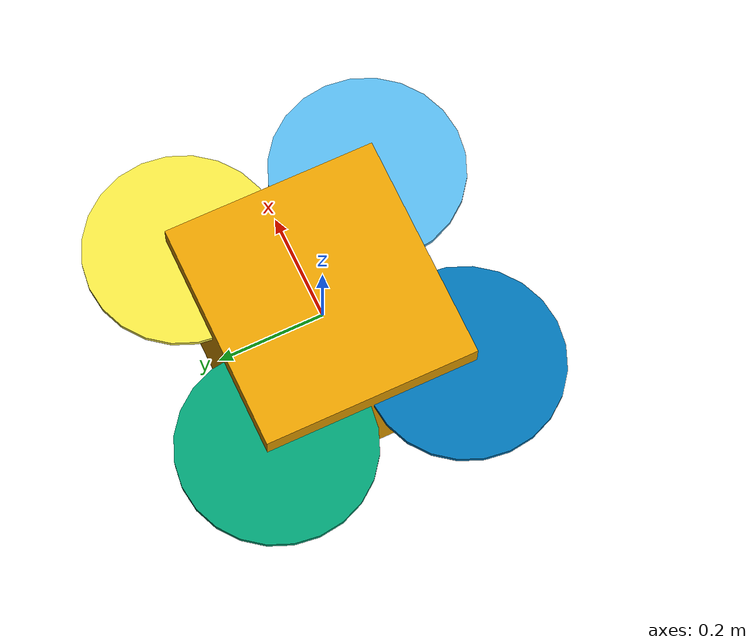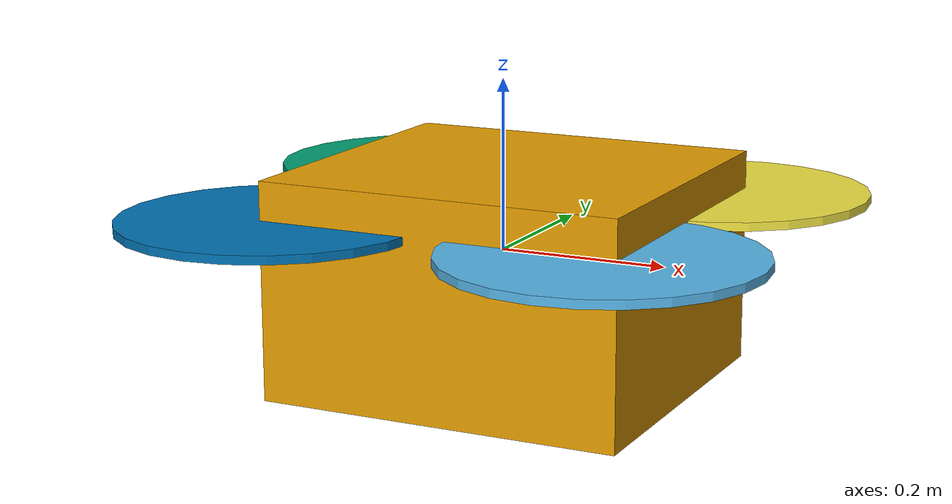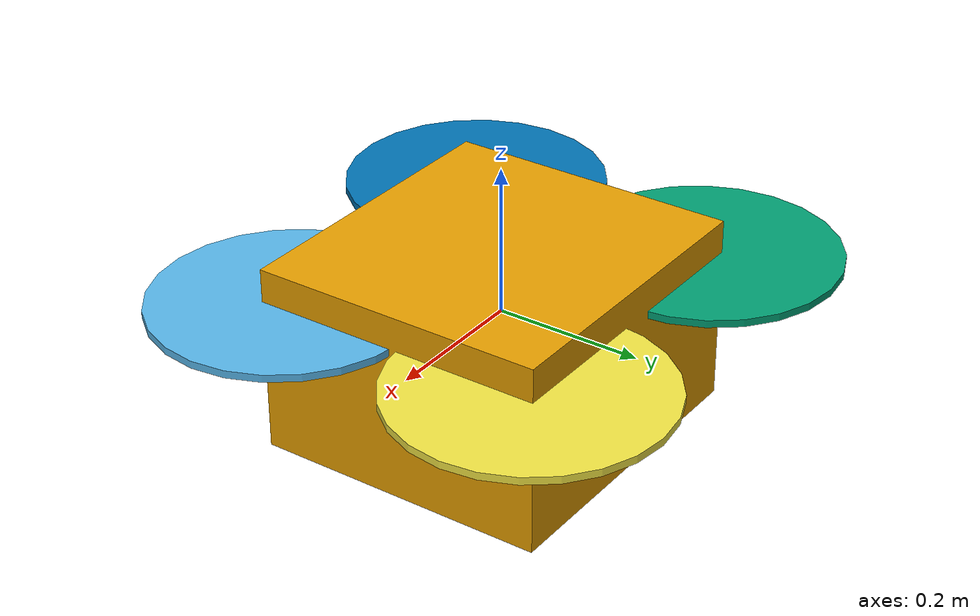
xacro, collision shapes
<?xml version='1.0' encoding='utf-8'?>
<robot name='coro_bandicoot_sensor_config_1' xmlns:xacro="http://ros.org/wiki/xacro">
  <xacro:arg name="name" default="coro_bandicoot_sensor_config_1"/>
  <xacro:property name="robot_namespace" value="$(arg name)"/>
  <link name='${robot_namespace}/base_link'>
    <inertial>
      <origin xyz='0 0 0' rpy='0 -0 0'/>
      <mass value='3.182'/>
      <inertia ixx='0.0298' ixy='0' ixz='0' iyy='0.0298' iyz='0' izz='0.0477'/>
    </inertial>
    <collision name='base_link_inertia_collision'>
      <origin xyz='0.01 0 -0.0275' rpy='0 -0 0'/>
      <geometry>
        <box size='0.43 0.4 0.255'/>
      </geometry>
    </collision>
    <visual name='plate1_visual'>
      <origin xyz='0 0 0' rpy='0 -0 0'/>
      <geometry>
        <box size='0.14 0.14 0.001'/>
      </geometry>
    </visual>
    <visual name='plate2_visual'>
      <origin xyz='0 0 -0.04' rpy='0 -0 0'/>
      <geometry>
        <box size='0.14 0.14 0.001'/>
      </geometry>
    </visual>
    <visual name='computer_visual'>
      <origin xyz='0.02 0.01 0.01' rpy='0 -0 0'/>
      <geometry>
        <box size='0.1 0.1 0.02'/>
      </geometry>
    </visual>
    <visual name='battery1_visual'>
      <origin xyz='0.13 0.12 -0.04' rpy='0 -0 0.74'/>
      <geometry>
        <box size='0.14 0.04 0.06'/>
      </geometry>
    </visual>
    <visual name='battery2_visual'>
      <origin xyz='-0.13 -0.12 -0.04' rpy='0 -0 0.74'/>
      <geometry>
        <box size='0.14 0.04 0.06'/>
      </geometry>
    </visual>
    <visual name='leg1_visual'>
      <origin xyz='0.2 0.18 -0.08' rpy='0 -0 0'/>
      <geometry>
        <cylinder radius='0.005' length='0.15'/>
      </geometry>
    </visual>
    <visual name='leg2_visual'>
      <origin xyz='0.2 -0.18 -0.08' rpy='0 -0 0'/>
      <geometry>
        <cylinder radius='0.005' length='0.15'/>
      </geometry>
    </visual>
    <visual name='leg3_visual'>
      <origin xyz='-0.2 0.18 -0.08' rpy='0 -0 0'/>
      <geometry>
        <cylinder radius='0.005' length='0.15'/>
      </geometry>
    </visual>
    <visual name='leg4_visual'>
      <origin xyz='-0.2 -0.18 -0.08' rpy='0 -0 0'/>
      <geometry>
        <cylinder radius='0.005' length='0.15'/>
      </geometry>
    </visual>
    <visual name='antenna1_visual'>
      <origin xyz='0.05 -0.05 0.05' rpy='0 -0 0'/>
      <geometry>
        <cylinder radius='0.005' length='0.1'/>
      </geometry>
    </visual>
    <visual name='antenna2_visual'>
      <origin xyz='-0.05 -0.05 0.05' rpy='0 -0 0'/>
      <geometry>
        <cylinder radius='0.005' length='0.1'/>
      </geometry>
    </visual>
    <visual name='arm1_visual'>
      <origin xyz='0.13 0.12 -0.005' rpy='0 -0 0.74'/>
      <geometry>
        <box size='0.21 0.03 0.01'/>
      </geometry>
    </visual>
    <visual name='arm2_visual'>
      <origin xyz='0.13 -0.12 -0.005' rpy='0 0 -0.74'/>
      <geometry>
        <box size='0.21 0.03 0.01'/>
      </geometry>
    </visual>
    <visual name='arm3_visual'>
      <origin xyz='-0.13 0.12 -0.005' rpy='0 0 -0.74'/>
      <geometry>
        <box size='0.21 0.03 0.01'/>
      </geometry>
    </visual>
    <visual name='arm4_visual'>
      <origin xyz='-0.13 -0.12 -0.005' rpy='0 -0 0.74'/>
      <geometry>
        <box size='0.21 0.03 0.01'/>
      </geometry>
    </visual>
    <visual name='arm1a_visual'>
      <origin xyz='0.06 0.06 -0.025' rpy='0 -0 0.02'/>
      <geometry>
        <box size='0.02 0.02 0.03'/>
      </geometry>
    </visual>
    <visual name='arm2a_visual'>
      <origin xyz='0.06 -0.06 -0.025' rpy='0 -0 0.02'/>
      <geometry>
        <box size='0.02 0.02 0.03'/>
      </geometry>
    </visual>
    <visual name='arm3a_visual'>
      <origin xyz='-0.06 0.06 -0.025' rpy='0 -0 0.02'/>
      <geometry>
        <box size='0.02 0.02 0.03'/>
      </geometry>
    </visual>
    <visual name='arm4a_visual'>
      <origin xyz='-0.06 -0.06 -0.025' rpy='0 -0 0.02'/>
      <geometry>
        <box size='0.02 0.02 0.03'/>
      </geometry>
    </visual>
    <visual name='motor1_visual'>
      <origin xyz='0.2 0.18 0.02' rpy='0 -0 0'/>
      <geometry>
        <cylinder radius='0.02' length='0.04'/>
      </geometry>
    </visual>
    <visual name='motor2_visual'>
      <origin xyz='-0.2 0.18 0.02' rpy='0 -0 0'/>
      <geometry>
        <cylinder radius='0.02' length='0.04'/>
      </geometry>
    </visual>
    <visual name='motor3_visual'>
      <origin xyz='0.2 -0.18 0.02' rpy='0 -0 0'/>
      <geometry>
        <cylinder radius='0.02' length='0.04'/>
      </geometry>
    </visual>
    <visual name='motor4_visual'>
      <origin xyz='-0.2 -0.18 0.02' rpy='0 -0 0'/>
      <geometry>
        <cylinder radius='0.02' length='0.04'/>
      </geometry>
    </visual>
    <visual name='camera_mount_visual'>
      <origin xyz='-0.07 0 0' rpy='0 -0 0'/>
      <geometry>
        <box size='0.001 0.038 0.08'/>
      </geometry>
    </visual>
    <visual name='lightbar1_visual'>
      <origin xyz='0.206 0.18 -0.06' rpy='0 -0 0'/>
      <geometry>
        <box size='0.001 0.038 0.04'/>
      </geometry>
    </visual>
    <visual name='lightbar2_visual'>
      <origin xyz='-0.206 -0.18 -0.08' rpy='0 -0 0'/>
      <geometry>
        <box size='0.001 0.038 0.04'/>
      </geometry>
    </visual>
    <visual name='ouster_visual'>
      <origin xyz='0.02 0 -0.04' rpy='3.14159 -0 -1.5708'/>
      <geometry>
        <mesh filename='package://coro_bandicoot_sensor_config_1/meshes/os1_64.dae' scale='1 1 1'/>
      </geometry>
    </visual>
    <visual name='d435_dae_up_visual'>
      <origin xyz='-0.07 0 0.04' rpy='3.14159 -1.5708 0'/>
      <geometry>
        <mesh filename='package://coro_bandicoot_sensor_config_1/meshes/realsense_d435.dae' scale='0.001 0.001 0.001'/>
      </geometry>
    </visual>
    <visual name='d435_dae_down_visual'>
      <origin xyz='-0.07 0 -0.01' rpy='-3.14159 1.5708 0'/>
      <geometry>
        <mesh filename='package://coro_bandicoot_sensor_config_1/meshes/realsense_d435.dae' scale='0.001 0.001 0.001'/>
      </geometry>
    </visual>
    <visual name='camera_front_left_visual'>
      <origin xyz='0.205 0.19 -0.1' rpy='0 -0 0.785398'/>
      <geometry>
        <box size='0.01 0.02 0.02'/>
      </geometry>
    </visual>
    <visual name='camera_lens_front_left_visual'>
      <origin xyz='0.212 0.197 -0.1' rpy='-0.785398 1.5708 0'/>
      <geometry>
        <cylinder radius='0.005' length='0.011'/>
      </geometry>
    </visual>
    <visual name='camera_front_right_visual'>
      <origin xyz='0.205 0.17 -0.1' rpy='0 0 -0.785398'/>
      <geometry>
        <box size='0.01 0.02 0.02'/>
      </geometry>
    </visual>
    <visual name='camera_lens_front_right_visual'>
      <origin xyz='0.212 0.163 -0.1' rpy='0.785398 1.5708 0'/>
      <geometry>
        <cylinder radius='0.005' length='0.011'/>
      </geometry>
    </visual>
    <visual name='camera_rear_left_visual'>
      <origin xyz='-0.08 0.01 0.05' rpy='0 0 -0.785398'/>
      <geometry>
        <box size='0.01 0.02 0.02'/>
      </geometry>
    </visual>
    <visual name='camera_lens_rear_left_visual'>
      <origin xyz='-0.087 0.017 0.05' rpy='0.785398 1.5708 0'/>
      <geometry>
        <cylinder radius='0.005' length='0.011'/>
      </geometry>
    </visual>
    <visual name='camera_rear_right_visual'>
      <origin xyz='-0.08 -0.01 0.05' rpy='0 -0 0.785398'/>
      <geometry>
        <box size='0.01 0.02 0.02'/>
      </geometry>
    </visual>
    <visual name='camera_lens_rear_right_visual'>
      <origin xyz='-0.087 -0.017 0.05' rpy='-0.785398 1.5708 0'/>
      <geometry>
        <cylinder radius='0.005' length='0.011'/>
      </geometry>
    </visual>
  </link>
  <sensor name='front_laser' update_rate='20'>
    <parent link='${robot_namespace}/base_link'/>
    <origin xyz='0.02 0 -0.04' rpy='3.14159 -0 0'/>
  </sensor>
  <sensor name='imu_sensor' update_rate='250'>
    <parent link='${robot_namespace}/base_link'/>
    <origin xyz='0 0 0' rpy='0 -0 0'/>
  </sensor>
  <sensor name='air_pressure' update_rate='20'>
    <parent link='${robot_namespace}/base_link'/>
    <origin xyz='0 0 0' rpy='0 -0 0'/>
  </sensor>
  <sensor name='magnetometer' update_rate='20'>
    <parent link='${robot_namespace}/base_link'/>
    <origin xyz='0 0 0' rpy='0 -0 0'/>
  </sensor>
  <sensor name='rgbd_up' update_rate='30'>
    <parent link='${robot_namespace}/base_link'/>
    <origin xyz='-0.055 0 0.067' rpy='3.14159 -1.5708 0'/>
    <camera>
      <image width='640' height='360' format='R8G8B8' hfov='1.50098' near='0.01' far='300' />
    </camera>
  </sensor>
  <sensor name='rgbd_down' update_rate='30'>
    <parent link='${robot_namespace}/base_link'/>
    <origin xyz='-0.083 0 -0.037' rpy='-3.14159 1.5708 0'/>
    <camera>
      <image width='640' height='360' format='R8G8B8' hfov='1.50098' near='0.01' far='300' />
    </camera>
  </sensor>
  <sensor name='camera_front_left' update_rate='25'>
    <parent link='${robot_namespace}/base_link'/>
    <origin xyz='0.219 0.204 -0.1' rpy='0 -0 0.785398'/>
    <camera>
      <image width='720' height='1080' format='R8G8B8' hfov='1.658' near='0.01' far='300' />
    </camera>
  </sensor>
  <sensor name='camera_front_right' update_rate='25'>
    <parent link='${robot_namespace}/base_link'/>
    <origin xyz='0.219 0.156 -0.1' rpy='0 0 -0.785398'/>
    <camera>
      <image width='720' height='1080' format='R8G8B8' hfov='1.658' near='0.01' far='300' />
    </camera>
  </sensor>
  <sensor name='camera_rear_left' update_rate='25'>
    <parent link='${robot_namespace}/base_link'/>
    <origin xyz='-0.094 0.024 0.05' rpy='0 -0 2.35619'/>
    <camera>
      <image width='720' height='1080' format='R8G8B8' hfov='1.658' near='0.01' far='300' />
    </camera>
  </sensor>
  <sensor name='camera_rear_right' update_rate='25'>
    <parent link='${robot_namespace}/base_link'/>
    <origin xyz='-0.094 -0.024 0.05' rpy='0 0 -2.35619'/>
    <camera>
      <image width='720' height='1080' format='R8G8B8' hfov='1.658' near='0.01' far='300' />
    </camera>
  </sensor>
  <sensor name='bottom_laser' update_rate='50'>
    <parent link='${robot_namespace}/base_link'/>
    <origin xyz='0.15 -0.15 -0.02' rpy='0 -1.57 0'/>
  </sensor>
  <link name='${robot_namespace}/rotor_0'>
    <inertial>
      <origin xyz='0 0 0' rpy='0 -0 0'/>
      <mass value='0.024'/>
      <inertia ixx='1e-05' ixy='0' ixz='0' iyy='0.0004' iyz='0' izz='0.0004'/>
    </inertial>
    <collision name='rotor_0_collision'>
      <origin xyz='0 0 0' rpy='0 -0 0'/>
      <geometry>
        <cylinder radius='0.178' length='0.01'/>
      </geometry>
    </collision>
    <visual name='rotor_0_visual'>
      <origin xyz='0 0 0' rpy='0 -0 0'/>
      <geometry>
        <mesh filename='package://coro_bandicoot_sensor_config_1/meshes/propeller_ccw.dae' scale='0.178 0.178 0.178'/>
      </geometry>
    </visual>
  </link>
  <link name='${robot_namespace}/rotor_1'>
    <inertial>
      <origin xyz='0 0 0' rpy='0 -0 0'/>
      <mass value='0.024'/>
      <inertia ixx='1e-05' ixy='0' ixz='0' iyy='0.0004' iyz='0' izz='0.0004'/>
    </inertial>
    <collision name='rotor_1_collision'>
      <origin xyz='0 0 0' rpy='0 -0 0'/>
      <geometry>
        <cylinder radius='0.178' length='0.01'/>
      </geometry>
    </collision>
    <visual name='rotor_1_visual'>
      <origin xyz='0 0 0' rpy='0 -0 0'/>
      <geometry>
        <mesh filename='package://coro_bandicoot_sensor_config_1/meshes/propeller_ccw.dae' scale='0.178 0.178 0.178'/>
      </geometry>
    </visual>
  </link>
  <link name='${robot_namespace}/rotor_2'>
    <inertial>
      <origin xyz='0 0 0' rpy='0 -0 0'/>
      <mass value='0.024'/>
      <inertia ixx='1e-05' ixy='0' ixz='0' iyy='0.0004' iyz='0' izz='0.0004'/>
    </inertial>
    <collision name='rotor_2_collision'>
      <origin xyz='0 0 0' rpy='0 -0 0'/>
      <geometry>
        <cylinder radius='0.178' length='0.01'/>
      </geometry>
    </collision>
    <visual name='rotor_2_visual'>
      <origin xyz='0 0 0' rpy='0 -0 0'/>
      <geometry>
        <mesh filename='package://coro_bandicoot_sensor_config_1/meshes/propeller_cw.dae' scale='0.178 0.178 0.178'/>
      </geometry>
    </visual>
  </link>
  <link name='${robot_namespace}/rotor_3'>
    <inertial>
      <origin xyz='0 0 0' rpy='0 -0 0'/>
      <mass value='0.024'/>
      <inertia ixx='1e-05' ixy='0' ixz='0' iyy='0.0004' iyz='0' izz='0.0004'/>
    </inertial>
    <collision name='rotor_3_collision'>
      <origin xyz='0 0 0' rpy='0 -0 0'/>
      <geometry>
        <cylinder radius='0.178' length='0.01'/>
      </geometry>
    </collision>
    <visual name='rotor_3_visual'>
      <origin xyz='0 0 0' rpy='0 -0 0'/>
      <geometry>
        <mesh filename='package://coro_bandicoot_sensor_config_1/meshes/propeller_cw.dae' scale='0.178 0.178 0.178'/>
      </geometry>
    </visual>
  </link>
  <joint name='rotor_0_joint' type='revolute'>
    <origin xyz='0.2 -0.18 0.05' rpy='0 -0 0'/>
    <parent link='${robot_namespace}/base_link'/>
    <child link='${robot_namespace}/rotor_0'/>
    <dynamics damping='0' friction='0' />
    <axis xyz='0 0 1'/>
    <limit lower='-1e+16' upper='1e+16' effort='-1' velocity='-1'/>
  </joint>
  <joint name='rotor_1_joint' type='revolute'>
    <origin xyz='-0.2 0.18 0.05' rpy='0 -0 0'/>
    <parent link='${robot_namespace}/base_link'/>
    <child link='${robot_namespace}/rotor_1'/>
    <dynamics damping='0' friction='0' />
    <axis xyz='0 0 1'/>
    <limit lower='-1e+16' upper='1e+16' effort='-1' velocity='-1'/>
  </joint>
  <joint name='rotor_2_joint' type='revolute'>
    <origin xyz='0.2 0.18 0.05' rpy='0 -0 0'/>
    <parent link='${robot_namespace}/base_link'/>
    <child link='${robot_namespace}/rotor_2'/>
    <dynamics damping='0' friction='0' />
    <axis xyz='0 0 1'/>
    <limit lower='-1e+16' upper='1e+16' effort='-1' velocity='-1'/>
  </joint>
  <joint name='rotor_3_joint' type='revolute'>
    <origin xyz='-0.2 -0.18 0.05' rpy='0 -0 0'/>
    <parent link='${robot_namespace}/base_link'/>
    <child link='${robot_namespace}/rotor_3'/>
    <dynamics damping='0' friction='0' />
    <axis xyz='0 0 1'/>
    <limit lower='-1e+16' upper='1e+16' effort='-1' velocity='-1'/>
  </joint>
</robot>
